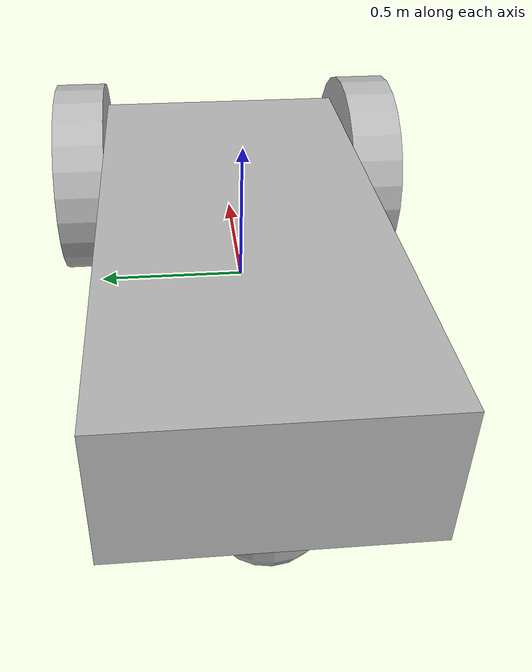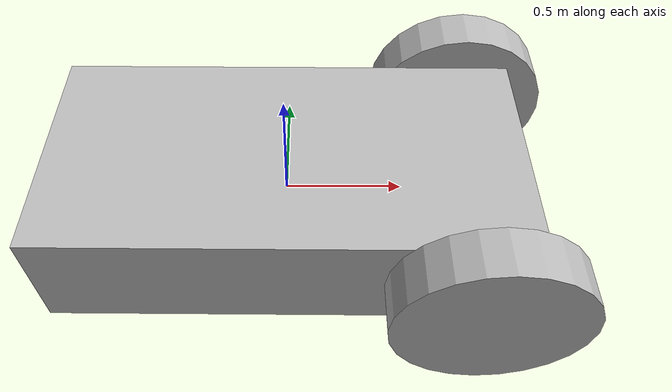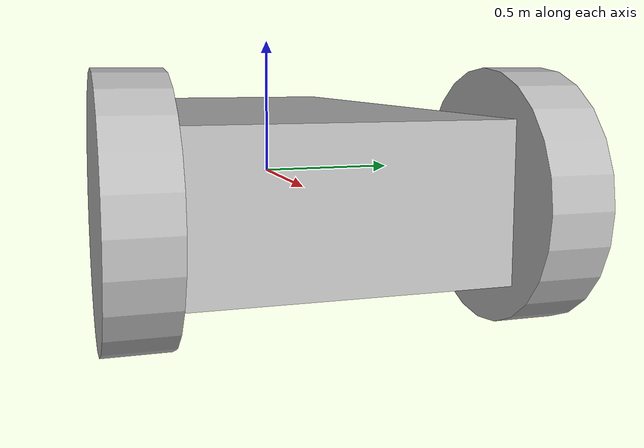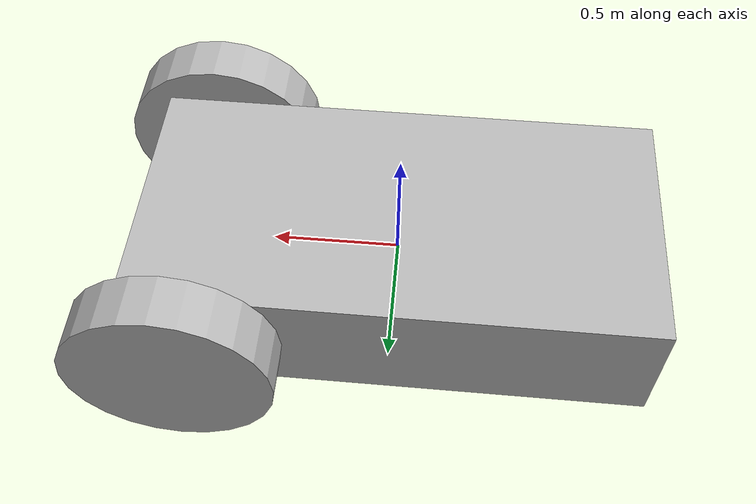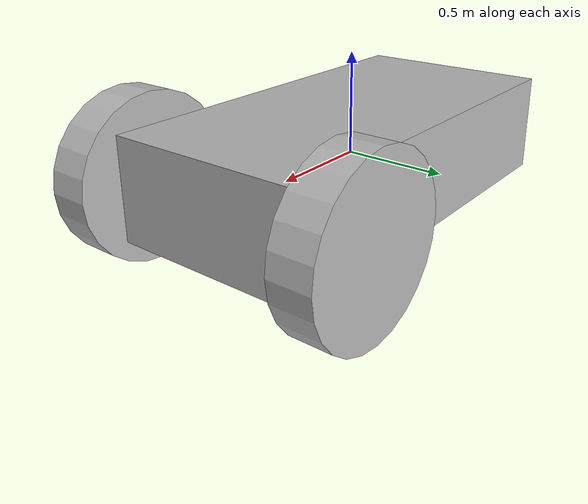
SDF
<sdf version='1.7'>
  <model name='mobile_robot'>
    <link name='base_link'>
      <inertial>
        <pose>-0.373143 0 -0.116607 0 -0 0</pose>
        <mass>2.14395</mass>
        <inertia>
          <ixx>0.144677</ixx>
          <ixy>0</ixy>
          <ixz>-0.106714</ixz>
          <iyy>0.772151</iyy>
          <iyz>0</iyz>
          <izz>0.834132</izz>
        </inertia>
      </inertial>
      <collision name='base_link_collision'>
        <pose>0 0 0 0 -0 0</pose>
        <geometry>
          <box>
            <size>2 1 0.5</size>
          </box>
        </geometry>
      </collision>
      <collision name='base_link_fixed_joint_lump__caster_collision_1'>
        <pose>-0.8 0 -0.25 0 -0 0</pose>
        <geometry>
          <sphere>
            <radius>0.2</radius>
          </sphere>
        </geometry>
      </collision>
      <visual name='base_link_visual'>
        <pose>0 0 0 0 -0 0</pose>
        <geometry>
          <box>
            <size>2 1 0.5</size>
          </box>
        </geometry>
      </visual>
      <visual name='base_link_fixed_joint_lump__caster_visual_1'>
        <pose>-0.8 0 -0.25 0 -0 0</pose>
        <geometry>
          <sphere>
            <radius>0.2</radius>
          </sphere>
        </geometry>
      </visual>
    </link>
    <joint name='left_wheel_joint' type='revolute'>
      <pose relative_to='base_link'>0.8 0.6 0 0 -0 0</pose>
      <parent>base_link</parent>
      <child>left_wheel</child>
      <axis>
        <xyz>0 0 1</xyz>
        <limit>
          <lower>-1e+16</lower>
          <upper>1e+16</upper>
        </limit>
        <dynamics>
          <spring_reference>0</spring_reference>
          <spring_stiffness>0</spring_stiffness>
        </dynamics>
      </axis>
    </joint>
    <link name='left_wheel'>
      <pose relative_to='left_wheel_joint'>0 0 0 0 -0 0</pose>
      <inertial>
        <pose>0 0 0 0 -0 0</pose>
        <mass>1</mass>
        <inertia>
          <ixx>0.043333</ixx>
          <ixy>0</ixy>
          <ixz>0</ixz>
          <iyy>0.043333</iyy>
          <iyz>0</iyz>
          <izz>0.08</izz>
        </inertia>
      </inertial>
      <collision name='left_wheel_collision'>
        <pose>0 0 0 1.5708 -0 0</pose>
        <geometry>
          <cylinder>
            <length>0.2</length>
            <radius>0.4</radius>
          </cylinder>
        </geometry>
      </collision>
      <visual name='left_wheel_visual'>
        <pose>0 0 0 1.5708 -0 0</pose>
        <geometry>
          <cylinder>
            <length>0.2</length>
            <radius>0.4</radius>
          </cylinder>
        </geometry>
      </visual>
    </link>
    <joint name='right_wheel_joint' type='revolute'>
      <pose relative_to='base_link'>0.8 -0.6 0 0 -0 0</pose>
      <parent>base_link</parent>
      <child>right_wheel</child>
      <axis>
        <xyz>0 0 1</xyz>
        <limit>
          <lower>-1e+16</lower>
          <upper>1e+16</upper>
        </limit>
        <dynamics>
          <spring_reference>0</spring_reference>
          <spring_stiffness>0</spring_stiffness>
        </dynamics>
      </axis>
    </joint>
    <link name='right_wheel'>
      <pose relative_to='right_wheel_joint'>0 0 0 0 -0 0</pose>
      <inertial>
        <pose>0 0 0 0 -0 0</pose>
        <mass>1</mass>
        <inertia>
          <ixx>0.043333</ixx>
          <ixy>0</ixy>
          <ixz>0</ixz>
          <iyy>0.043333</iyy>
          <iyz>0</iyz>
          <izz>0.08</izz>
        </inertia>
      </inertial>
      <collision name='right_wheel_collision'>
        <pose>0 0 0 1.5708 -0 0</pose>
        <geometry>
          <cylinder>
            <length>0.2</length>
            <radius>0.4</radius>
          </cylinder>
        </geometry>
      </collision>
      <visual name='right_wheel_visual'>
        <pose>0 0 0 1.5708 -0 0</pose>
        <geometry>
          <cylinder>
            <length>0.2</length>
            <radius>0.4</radius>
          </cylinder>
        </geometry>
      </visual>
    </link>
  </model>
</sdf>
